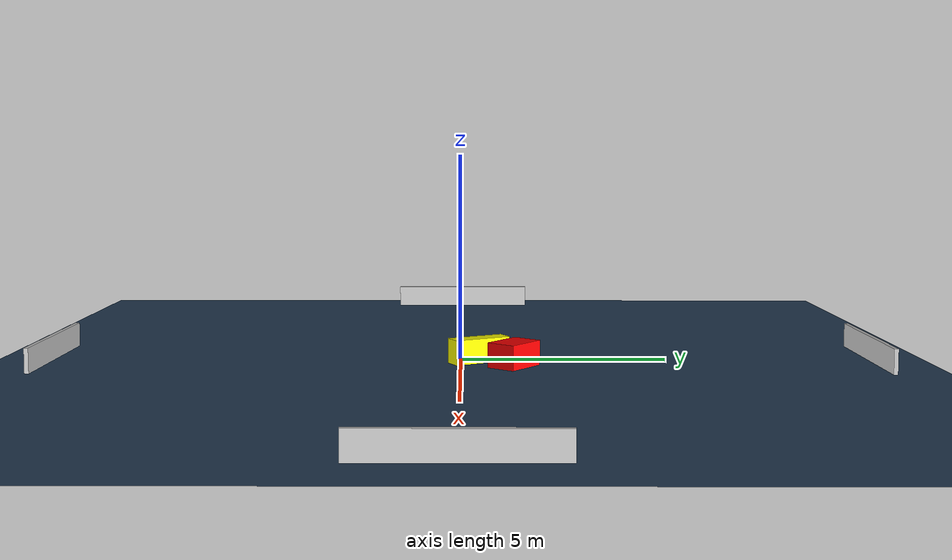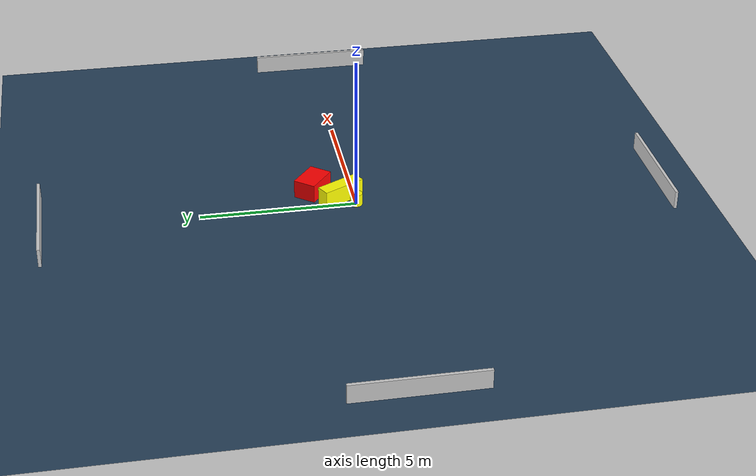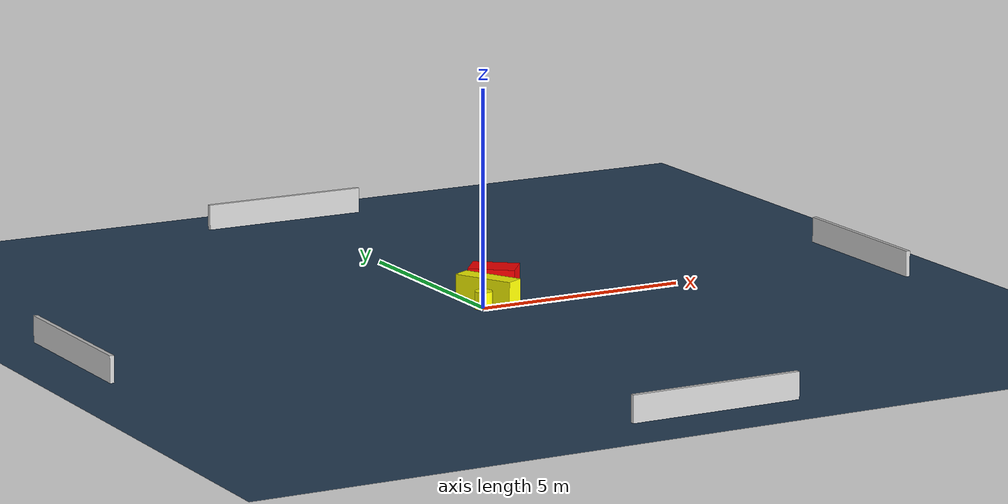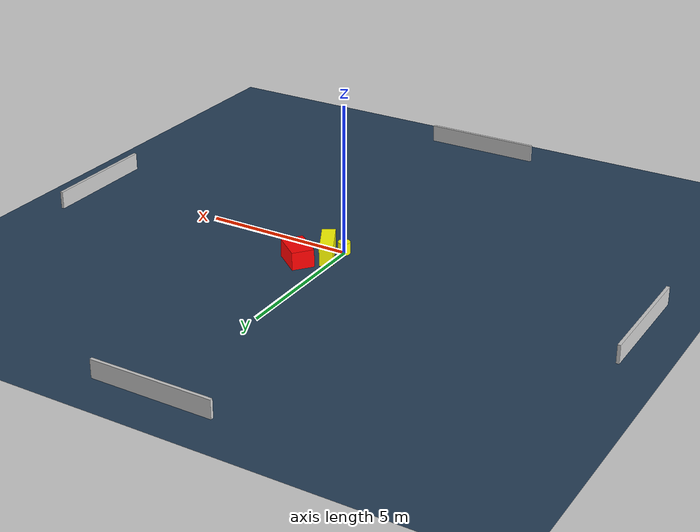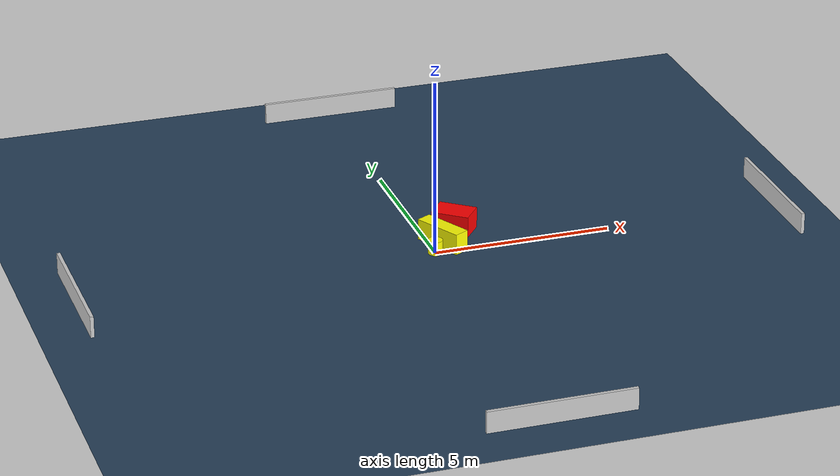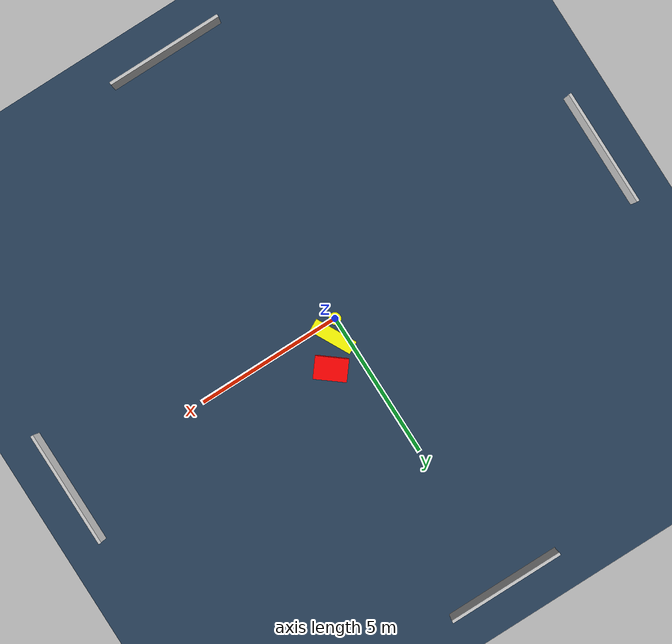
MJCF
<?xml version="1.0" ?>
<mujoco model="generated_environment">
  <option timestep="0.01" integrator="RK4" cone="elliptic"/>
  <default>
    <geom density="1"/>
  </default>
  <asset>
    <texture builtin="gradient" height="3072" name="skybox" rgb1="0.3 0.5 0.7" rgb2="0 0 0" type="skybox" width="512"/>
    <texture builtin="checker" height="300" name="groundplane" rgb1="0.2 0.3 0.4" rgb2="0.1 0.2 0.3" type="2d" width="300"/>
    <material name="groundplane" reflectance="0.2" texrepeat="5 5" texture="groundplane"/>
  </asset>
  <worldbody>
    <light dir="0 0 -1" directional="true" pos="0 0 1.5"/>
    <geom condim="3" friction="0.5 0.005 0.001" material="groundplane" name="floor" pos="0 0 0" size="0 0 0.05" type="plane"/>
    <body name="walls">
      <geom name="wall_1" condim="4" pos="-10.0 0.0 0.3" rgba="0.800000011920929 0.800000011920929 0.800000011920929 1.0" size="0.05 2.0 0.3" type="box"/>
      <geom name="wall_2" condim="4" pos="10.0 0.0 0.3" rgba="0.800000011920929 0.800000011920929 0.800000011920929 1.0" size="0.05 2.0 0.3" type="box"/>
      <geom name="wall_3" condim="4" pos="0.0 -10.0 0.3" rgba="0.800000011920929 0.800000011920929 0.800000011920929 1.0" size="2.0 0.05 0.3" type="box"/>
      <geom name="wall_4" condim="4" pos="0.0 10.0 0.3" rgba="0.800000011920929 0.800000011920929 0.800000011920929 1.0" size="2.0 0.05 0.3" type="box"/>
    </body>
    <body name="robot">
      <joint name="joint_x" type="slide" pos="0 0 0" axis="1 0 0"/>
      <joint name="joint_y" type="slide" pos="0 0 0" axis="0 1 0"/>
      <geom name="robot" type="cylinder" pos="0.0 0.0 0.2" size="0.2 0.2 0.0" mass="5.0" friction="1.0 0.005 0.0001" condim="4" rgba="1.0 1.0 0.0 1.0"/>
    </body>
    <body name="obstacle_1_movable">
      <geom name="obstacle_1_movable" condim="4" pos="0.35516220787857067 0.44236301190550664 0.3" euler="0 0 27.717403099184075" friction="0.0 0.005 0.001" rgba="1.0 1.0 0.0 1.0" size="0.22162981355858186 0.7266446156884878 0.3" type="box" mass="0.1"/>
      <joint type="free"/>
    </body>
    <body name="obstacle_2_static">
      <geom name="obstacle_2_static" condim="4" pos="0.9579974597829883 1.2676566312852946 0.3" euler="0 0 141.6193358232834" friction="0.0 0.005 0.001" rgba="1.0 0.0 0.0 1.0" size="0.5391244875791533 0.36998485029787237 0.3" type="box"/>
    </body>
  </worldbody>
  <actuator>
    <motor name="actuator_x" joint="joint_x" gear="1" ctrlrange="-1 1"/>
    <motor name="actuator_y" joint="joint_y" gear="1" ctrlrange="-1 1"/>
  </actuator>
</mujoco>
